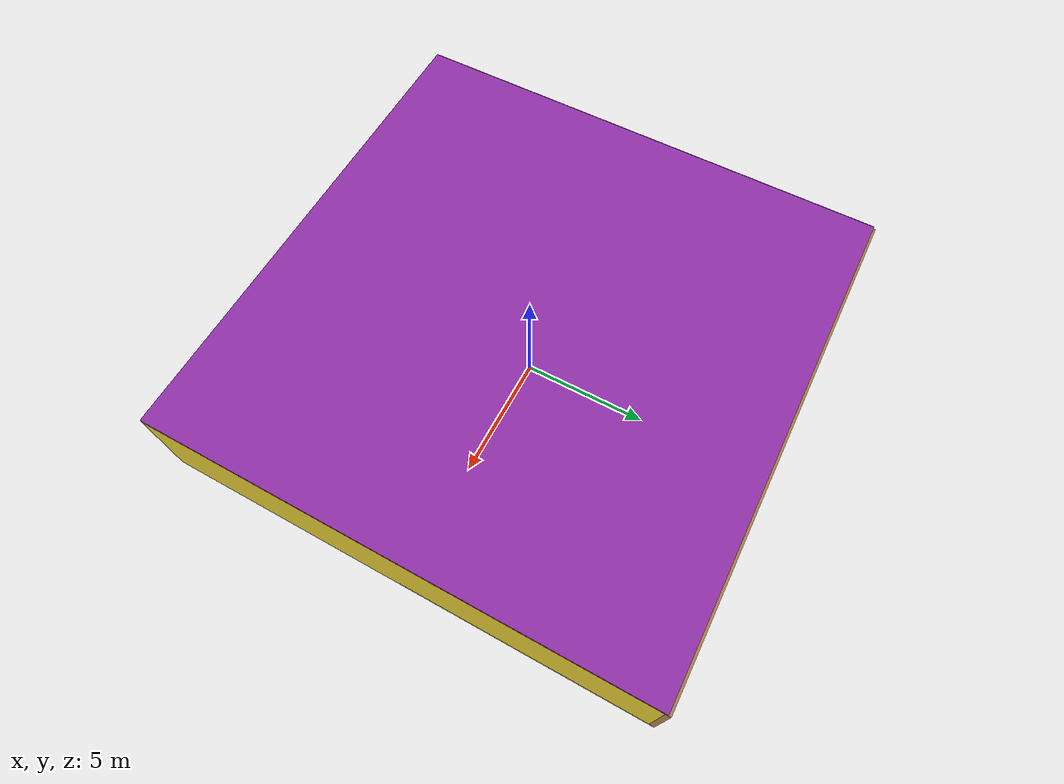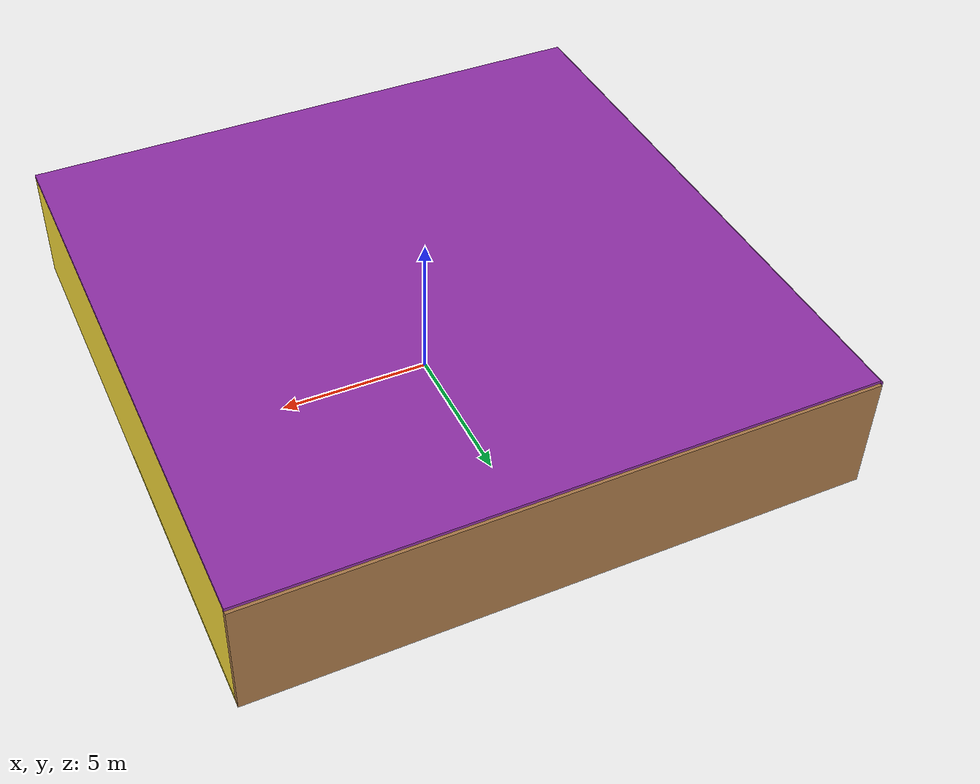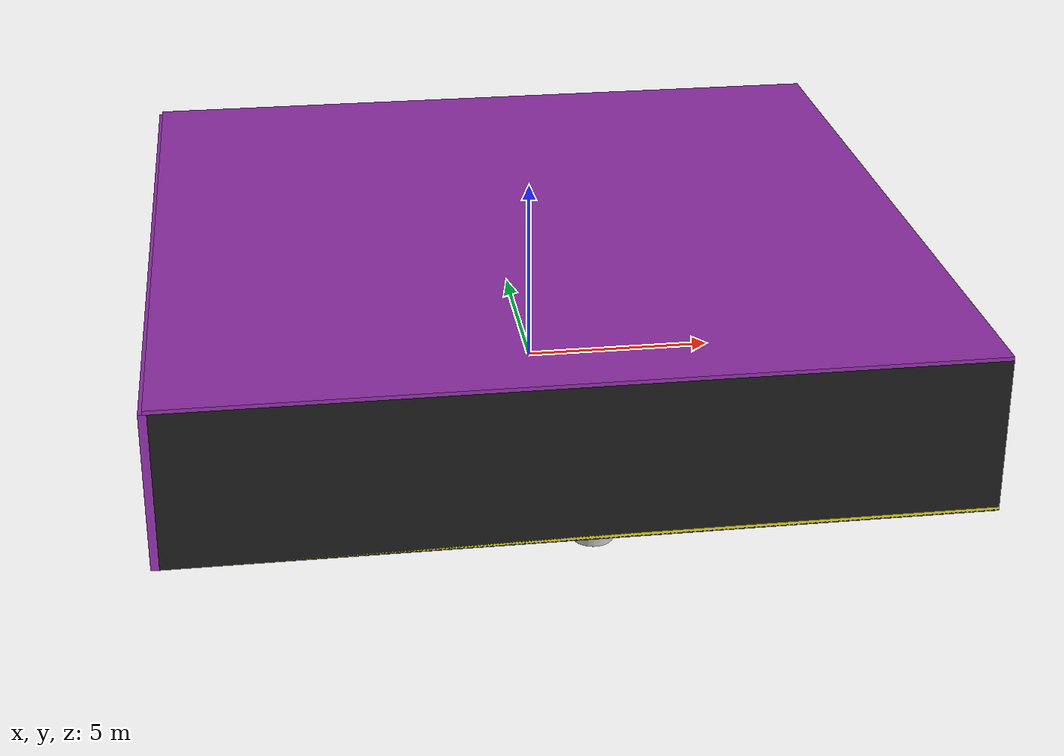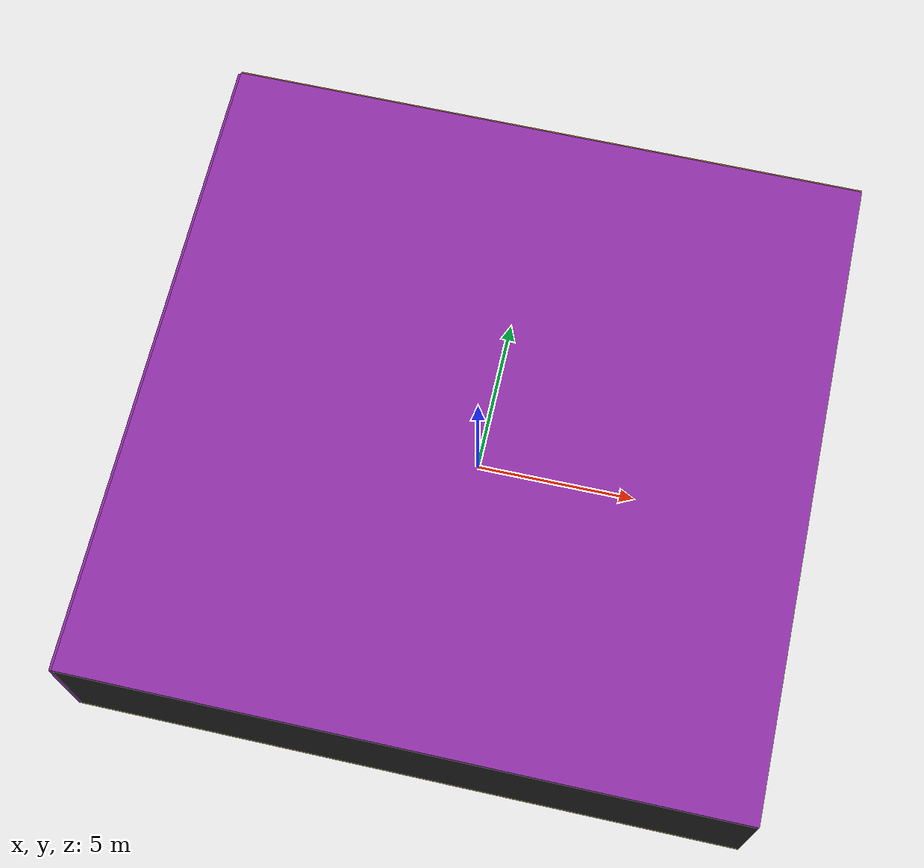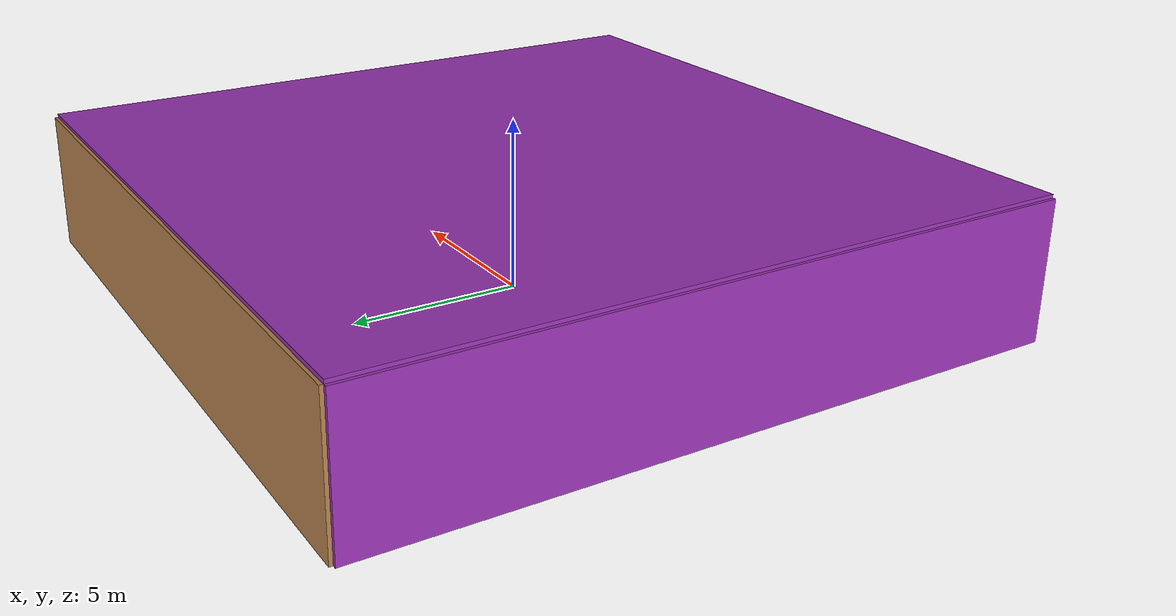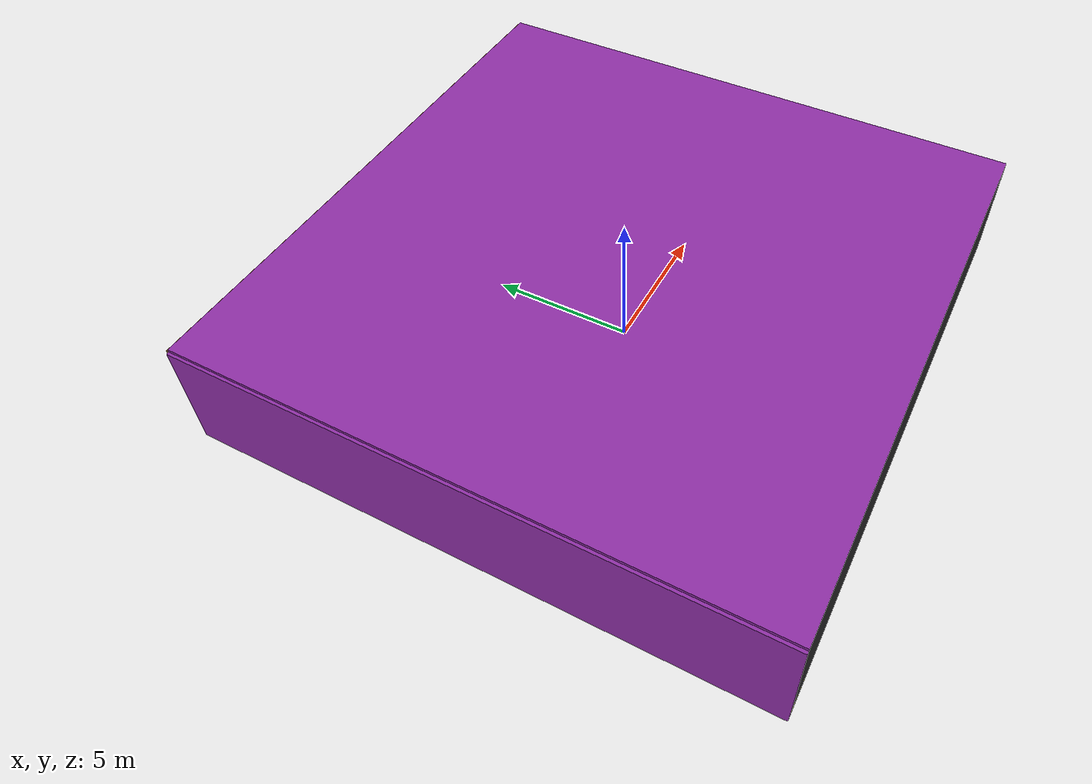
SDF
<sdf version="1.4">
 <world name="default">
  <physics type="ode">
   <max_step_size>0.001</max_step_size>
   <real_time_factor>1</real_time_factor>
   <real_time_update_rate>1000</real_time_update_rate>
   <gravity>0 0 -9.8</gravity>
  </physics>
  <scene><ambient>0.4 0.4 0.4 1</ambient><background>0.7 0.7 0.7 1</background><shadows>1</shadows></scene>
  <model name="Surrounding">
   <static>1</static>
   <link name="Ceiling">
    <collision name="Ceiling_Collision"><geometry><box><size>20 20 0.1</size></box></geometry></collision>
    <visual name="Ceiling_Visual">
     <geometry><box><size>20 20 0.1</size></box></geometry>
     <material>
      <script><uri>file://media/materials/scripts/gazebo.material</uri><name>Gazebo/PurpleGlow</name></script>
     </material>
    </visual>
    <pose>0 0 4.05 0 0 0</pose>
   </link>
   <link name="Wall_South">
    <collision name="Wall_South_Collision">
     <geometry><box><size>20 0 4</size></box></geometry>
     <pose>0 0 2 0 -0 0</pose>
    </collision>
    <visual name="Wall_South_Visual">
     <pose>0 0 2 0 -0 0</pose>
     <geometry><box><size>20 0 4</size></box></geometry>
     <material>
      <script><uri>file://media/materials/scripts/gazebo.material</uri><name>Gazebo/Black</name></script>
     </material>
    </visual>
    <velocity_decay><linear>0</linear><angular>0</angular></velocity_decay>
    <pose>0 -10 0 0 -0 0</pose>
   </link>
   <link name="Wall_East">
    <collision name="Wall_21_Collision">
     <geometry><box><size>20 0 4</size></box></geometry>
     <pose>0 0 2 0 -0 0</pose>
    </collision>
    <visual name="Wall_21_Visual">
     <pose>0 0 2 0 -0 0</pose>
     <geometry><box><size>20 0 4</size></box></geometry>
     <material>
      <script><uri>file://media/materials/scripts/gazebo.material</uri><name>Gazebo/ZincYellow</name></script>
     </material>
    </visual>
    <velocity_decay><linear>0</linear><angular>0</angular></velocity_decay>
    <pose>10 0 0 0 -0 1.5708</pose>
   </link>
   <link name="Wall_North">
    <collision name="Wall_22_Collision">
     <geometry><box><size>20 0.2 4</size></box></geometry>
     <pose>0 0 2 0 -0 0</pose>
    </collision>
    <visual name="Wall_22_Visual">
     <pose>0 0 2 0 -0 0</pose>
     <geometry><box><size>20 0.2 4</size></box></geometry>
     <material>
      <script><uri>file://media/materials/scripts/gazebo.material</uri><name>Gazebo/WoodPallet</name></script>
     </material>
    </visual>
    <velocity_decay><linear>0</linear><angular>0</angular></velocity_decay>
    <pose>0 10 0 0 -0 0</pose>
   </link>
   <link name="Wall_West">
    <collision name="Wall_23_Collision">
     <geometry><box><size>20 0.2 4</size></box></geometry>
     <pose>0 0 2 0 -0 0</pose>
    </collision>
    <visual name="Wall_23_Visual">
     <pose>0 0 2 0 -0 0</pose>
     <geometry><box><size>20 0.2 4</size></box></geometry>
     <material>
      <script><uri>file://media/materials/scripts/gazebo.material</uri><name>Gazebo/Purple</name></script>
     </material>
    </visual>
    <velocity_decay><linear>0</linear><angular>0</angular></velocity_decay>
    <pose>-10 0 0 0 0 -1.5708</pose>
   </link>
   <link name="Ground_link">
    <collision name="collision">
     <pose>0 0 .05 0 -0 0</pose>
     <geometry><box><size>20 20 0.1</size></box></geometry>
    </collision>
    <visual name="visual">
     <pose>0 0 .05 0 -0 0</pose>
     <geometry><box><size>20 20 0.1</size></box></geometry>
     <material>
      <script><uri>file://media/materials/scripts/gazebo.material</uri><name>Gazebo/Yellow</name></script>
     </material>
    </visual>
   </link>
   <static>1</static>
  </model>
  <spherical_coordinates>
   <surface_model>EARTH_WGS84</surface_model>
   <latitude_deg>0</latitude_deg>
   <longitude_deg>0</longitude_deg>
   <elevation>0</elevation>
   <heading_deg>0</heading_deg>
  </spherical_coordinates>
  <light name="lightball_0" type="diffuse">
   <diffuse>0.8 0.8 0.8 1</diffuse>
   <specular>0.2 0.2 0.2 1</specular>
   <attenuation>
    <range>100</range>
    <constant>0.7</constant>
    <linear>0.01</linear>
    <quadratic>0.001</quadratic>
   </attenuation>
   <direction>-0.5 0.1 -0.9</direction>
   <pose>-6.19152914901 7.41784914752 0.817212073505 0 0 0</pose>
  </light>
  <light name="lightball_1" type="diffuse">
   <diffuse>0.8 0.8 0.8 1</diffuse>
   <specular>0.2 0.2 0.2 1</specular>
   <attenuation>
    <range>100</range>
    <constant>0.7</constant>
    <linear>0.01</linear>
    <quadratic>0.001</quadratic>
   </attenuation>
   <direction>-0.5 0.1 -0.9</direction>
   <pose>5.41303761174 -2.82800063024 3.04928896616 0 0 0</pose>
  </light>
  <light name="lightball_2" type="diffuse">
   <diffuse>0.8 0.8 0.8 1</diffuse>
   <specular>0.2 0.2 0.2 1</specular>
   <attenuation>
    <range>100</range>
    <constant>0.7</constant>
    <linear>0.01</linear>
    <quadratic>0.001</quadratic>
   </attenuation>
   <direction>-0.5 0.1 -0.9</direction>
   <pose>4.53469198535 -8.81867461823 2.40243961267 0 0 0</pose>
  </light>
  <light name="lightball_3" type="diffuse">
   <diffuse>0.8 0.8 0.8 1</diffuse>
   <specular>0.2 0.2 0.2 1</specular>
   <attenuation>
    <range>100</range>
    <constant>0.7</constant>
    <linear>0.01</linear>
    <quadratic>0.001</quadratic>
   </attenuation>
   <direction>-0.5 0.1 -0.9</direction>
   <pose>8.78477293539 0.177444898521 2.87249636377 0 0 0</pose>
  </light>
  <light name="lightball_4" type="diffuse">
   <diffuse>0.8 0.8 0.8 1</diffuse>
   <specular>0.2 0.2 0.2 1</specular>
   <attenuation>
    <range>100</range>
    <constant>0.7</constant>
    <linear>0.01</linear>
    <quadratic>0.001</quadratic>
   </attenuation>
   <direction>-0.5 0.1 -0.9</direction>
   <pose>6.94951693758 -5.66834972806 1.94061424835 0 0 0</pose>
  </light>
  <light name="lightball_5" type="diffuse">
   <diffuse>0.8 0.8 0.8 1</diffuse>
   <specular>0.2 0.2 0.2 1</specular>
   <attenuation>
    <range>100</range>
    <constant>0.7</constant>
    <linear>0.01</linear>
    <quadratic>0.001</quadratic>
   </attenuation>
   <direction>-0.5 0.1 -0.9</direction>
   <pose>7.25013816829 3.84468068363 1.64866518576 0 0 0</pose>
  </light>
  <light name="lightball_6" type="diffuse">
   <diffuse>0.8 0.8 0.8 1</diffuse>
   <specular>0.2 0.2 0.2 1</specular>
   <attenuation>
    <range>100</range>
    <constant>0.7</constant>
    <linear>0.01</linear>
    <quadratic>0.001</quadratic>
   </attenuation>
   <direction>-0.5 0.1 -0.9</direction>
   <pose>1.16204263744 -5.12092121035 3.37536297314 0 0 0</pose>
  </light>
  <light name="lightball_7" type="diffuse">
   <diffuse>0.8 0.8 0.8 1</diffuse>
   <specular>0.2 0.2 0.2 1</specular>
   <attenuation>
    <range>100</range>
    <constant>0.7</constant>
    <linear>0.01</linear>
    <quadratic>0.001</quadratic>
   </attenuation>
   <direction>-0.5 0.1 -0.9</direction>
   <pose>-7.96433217886 -9.48925768994 3.78109710356 0 0 0</pose>
  </light>
  <light name="lightball_8" type="diffuse">
   <diffuse>0.8 0.8 0.8 1</diffuse>
   <specular>0.2 0.2 0.2 1</specular>
   <attenuation>
    <range>100</range>
    <constant>0.7</constant>
    <linear>0.01</linear>
    <quadratic>0.001</quadratic>
   </attenuation>
   <direction>-0.5 0.1 -0.9</direction>
   <pose>2.94339362965 -7.28959897169 1.62321146002 0 0 0</pose>
  </light>
  <light name="lightball_9" type="diffuse">
   <diffuse>0.8 0.8 0.8 1</diffuse>
   <specular>0.2 0.2 0.2 1</specular>
   <attenuation>
    <range>100</range>
    <constant>0.7</constant>
    <linear>0.01</linear>
    <quadratic>0.001</quadratic>
   </attenuation>
   <direction>-0.5 0.1 -0.9</direction>
   <pose>-4.25394619167 -4.19747470638 2.9135129712 0 0 0</pose>
  </light>
  <light name="lightball_10" type="diffuse">
   <diffuse>0.8 0.8 0.8 1</diffuse>
   <specular>0.2 0.2 0.2 1</specular>
   <attenuation>
    <range>100</range>
    <constant>0.7</constant>
    <linear>0.01</linear>
    <quadratic>0.001</quadratic>
   </attenuation>
   <direction>-0.5 0.1 -0.9</direction>
   <pose>-8.41012301743 -4.34437376 2.70493644465 0 0 0</pose>
  </light>
  <light name="lightball_11" type="diffuse">
   <diffuse>0.8 0.8 0.8 1</diffuse>
   <specular>0.2 0.2 0.2 1</specular>
   <attenuation>
    <range>100</range>
    <constant>0.7</constant>
    <linear>0.01</linear>
    <quadratic>0.001</quadratic>
   </attenuation>
   <direction>-0.5 0.1 -0.9</direction>
   <pose>-5.19996433242 6.42730091161 2.59649883271 0 0 0</pose>
  </light>
  <include><uri>model://cabinet</uri><pose>-3.71150147746 6.85190075225 0 0 0 0.831146884067</pose></include>
  <include><uri>model://cabinet</uri><pose>-0.732089715152 -6.44746262114 0 0 0 1.84856248256</pose></include>
  <include>
   <uri>model://textured_shapes</uri>
   <pose>0.798695124817 -7.60073911182 0 0 0 2.79291435548</pose>
  </include>
  <include>
   <uri>model://robocup_3Dsim_goal</uri>
   <pose>2.09491712845 8.51546733793 0 0 0 0.763335264769</pose>
  </include>
  <include><uri>model://cabinet</uri><pose>4.83069520398 4.12878875196 0 0 0 1.49772955992</pose></include>
 </world>
</sdf>

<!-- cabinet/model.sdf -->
<sdf version="1.5">
  <model name="cabinet">
    <static>true</static>
    <link name="cabinet_bottom_plate">
      <inertial>
        <pose>0 0 -1 0 0 0</pose>
        <inertia>
          <ixx>2.050000</ixx>
          <ixy>0</ixy>
          <ixz>0</ixz>
          <iyy>2.050000</iyy>
          <iyz>0</iyz>
          <izz>2.050000</izz>
        </inertia>
        <mass>25.000000</mass>
      </inertial>
      <collision name="cabinet_bottom_plate_geom">
        <pose>0 0 0.010000 0 0 0</pose>
        <geometry>
          <box>
            <size>0.450000 0.450000 0.020000</size>
          </box>
        </geometry>
      </collision>
      <visual name="cabinet_bottom_plate_geom_visual">
        <pose>0 0 0.010000 0 0 0</pose>
        <geometry>
          <box>
            <size>0.450000 0.450000 0.020000</size>
          </box>
        </geometry>
        <material>
          <script>
            <uri>model://media/materials/scripts/gazebo.material</uri>
            <name>Gazebo/Wood</name>
          </script>
        </material>
      </visual>
      <collision name="cabinet_bottom_plate_geom_cabinet_back_plate">
        <pose>0.235000 0 0.510000 0 0 0</pose>
        <geometry>
          <box>
            <size>0.020000 0.450000 1.020000</size>
          </box>
        </geometry>
      </collision>
      <visual name="cabinet_bottom_plate_geom_cabinet_back_plate_visual">
        <pose>0.235000 0 0.510000 0 0 0</pose>
        <geometry>
          <box>
            <size>0.020000 0.450000 1.020000</size>
          </box>
        </geometry>
        <material>
          <script>
            <uri>model://media/materials/scripts/gazebo.material</uri>
            <name>Gazebo/Wood</name>
          </script>
        </material>
      </visual>
      <collision name="cabinet_bottom_plate_geom_cabinet_left_plate">
        <pose>0 0.235000 0.510000 0 0 0</pose>
        <geometry>
          <box>
            <size>0.450000 0.020000 1.020000</size>
          </box>
        </geometry>
      </collision>
      <visual name="cabinet_bottom_plate_geom_cabinet_left_plate_visual">
        <pose>0 0.235000 0.510000 0 0 0</pose>
        <geometry>
          <box>
            <size>0.450000 0.020000 1.020000</size>
          </box>
        </geometry>
        <material>
          <script>
            <uri>model://media/materials/scripts/gazebo.material</uri>
            <name>Gazebo/Wood</name>
          </script>
        </material>
      </visual>
      <collision name="cabinet_bottom_plate_geom_cabinet_middle_plate">
        <pose>0 0 0.510000 0 0 0</pose>
        <geometry>
          <box>
            <size>0.450000 0.450000 0.020000</size>
          </box>
        </geometry>
      </collision>
      <visual name="cabinet_bottom_plate_geom_cabinet_middle_plate_visual">
        <pose>0 0 0.510000 0 0 0</pose>
        <geometry>
          <box>
            <size>0.450000 0.450000 0.020000</size>
          </box>
        </geometry>
        <material>
          <script>
            <uri>model://media/materials/scripts/gazebo.material</uri>
            <name>Gazebo/Wood</name>
          </script>
        </material>
      </visual>
      <collision name="cabinet_bottom_plate_geom_cabinet_right_plate">
        <pose>0 -0.235000 0.510000 0 0 0</pose>
        <geometry>
          <box>
            <size>0.450000 0.020000 1.020000</size>
          </box>
        </geometry>
      </collision>
      <visual name="cabinet_bottom_plate_geom_cabinet_right_plate_visual">
        <pose>0 -0.235000 0.510000 0 0 0</pose>
        <geometry>
          <box>
            <size>0.450000 0.020000 1.020000</size>
          </box>
        </geometry>
        <material>
          <script>
            <uri>model://media/materials/scripts/gazebo.material</uri>
            <name>Gazebo/Wood</name>
          </script>
        </material>
      </visual>
      <collision name="cabinet_bottom_plate_geom_cabinet_top_plate">
        <pose>0 0 1.010000 0 0 0</pose>
        <geometry>
          <box>
            <size>0.450000 0.450000 0.020000</size>
          </box>
        </geometry>
      </collision>
      <visual name="cabinet_bottom_plate_geom_cabinet_top_plate_visual">
        <pose>0 0 1.010000 0 0 0</pose>
        <geometry>
          <box>
            <size>0.450000 0.450000 0.020000</size>
          </box>
        </geometry>
        <material>
          <script>
            <uri>model://media/materials/scripts/gazebo.material</uri>
            <name>Gazebo/Wood</name>
          </script>
        </material>
      </visual>
    </link>
  </model>
</sdf>

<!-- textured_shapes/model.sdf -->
<sdf version="1.6">
  <model name="textured_shapes">
    <pose>0 0 0.5 0 0 0</pose>
    <link name="box">
      <pose>0 -1.5 0 0 0 0</pose>
      <collision name="collision">
        <geometry>
          <box>
            <size>1 1 1</size>
          </box>
        </geometry>
      </collision>
      <visual name="visual">
        <geometry>
          <box>
            <size>1 1 1</size>
          </box>
        </geometry>
        <material>
          <script>
            <uri>model://../model_source/models/textured_shapes/materials/scripts</uri>
            <uri>model://../model_source/models/textured_shapes/materials/textures</uri>
            <name>TexturedShape/Squares</name>
          </script>
        </material>
      </visual>
    </link>
    <link name="sphere">
      <collision name="collision">
        <geometry>
          <sphere>
            <radius>0.5</radius>
          </sphere>
        </geometry>
      </collision>
      <visual name="visual">
        <geometry>
          <sphere>
            <radius>0.5</radius>
          </sphere>
        </geometry>
        <material>
          <script>
            <uri>model://../model_source/models/textured_shapes/materials/scripts</uri>
            <uri>model://../model_source/models/textured_shapes/materials/textures</uri>
            <name>TexturedShape/Squares</name>
          </script>
        </material>
      </visual>
    </link>
    <link name="cylinder">
      <pose>0 1.5 0 0 0 0</pose>
      <collision name="collision">
        <geometry>
          <cylinder>
            <radius>0.5</radius>
            <length>1</length>
          </cylinder>
        </geometry>
      </collision>
      <visual name="visual">
        <geometry>
          <cylinder>
            <radius>0.5</radius>
            <length>1</length>
          </cylinder>
        </geometry>
        <material>
          <script>
            <uri>model://../model_source/models/textured_shapes/materials/scripts</uri>
            <uri>model://../model_source/models/textured_shapes/materials/textures</uri>
            <name>TexturedShape/Squares</name>
          </script>
        </material>
      </visual>
    </link>
  </model>
</sdf>

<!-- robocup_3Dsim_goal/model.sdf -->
<sdf version="1.5">
  <model name="robocup_3d_goal">
    <static>true</static>
    <link name="left_post">
      <pose>0 1.05 0.45 0 0 0</pose>
      <collision name="collision">
        <geometry>
          <cylinder>
            <radius>0.05</radius>
            <length>0.9</length>
          </cylinder>
        </geometry>
      </collision>
      <visual name="visual">
        <geometry>
          <cylinder>
            <radius>0.05</radius>
            <length>0.9</length>
          </cylinder>
        </geometry>
        <material>
          <script>
            <uri>file://media/materials/scripts/gazebo.material</uri>
            <name>Gazebo/ZincYellow</name>
          </script>
        </material>
      </visual>
    </link>
    <link name="left_support_horiz_lower">
      <pose>0.30 1.05 0.01 0 0 0</pose>
      <collision name="collision">
        <geometry>
          <box>
            <size>0.50 0.02 0.02</size>
          </box>
        </geometry>
      </collision>
      <visual name="visual">
        <geometry>
          <box>
            <size>0.50 0.02 0.02</size>
          </box>
        </geometry>
        <material>
          <script>
            <uri>file://media/materials/scripts/gazebo.material</uri>
            <name>Gazebo/White</name>
          </script>
        </material>
      </visual>
    </link>
    <link name="left_support_horiz_upper">
      <pose>0.30 1.05 0.79 0 0 0</pose>
      <collision name="collision">
        <geometry>
          <box>
            <size>0.50 0.02 0.02</size>
          </box>
        </geometry>
      </collision>
      <visual name="visual">
        <geometry>
          <box>
            <size>0.50 0.02 0.02</size>
          </box>
        </geometry>
        <material>
          <script>
            <uri>file://media/materials/scripts/gazebo.material</uri>
            <name>Gazebo/White</name>
          </script>
        </material>
      </visual>
    </link>
    <link name="left_support_vertical">
      <pose>0.56 1.05 0.4 0 1.5708 0</pose>
      <collision name="collision">
        <geometry>
          <box>
            <size>0.80 0.02 0.02</size>
          </box>
        </geometry>
      </collision>
      <visual name="visual">
        <geometry>
          <box>
            <size>0.80 0.02 0.02</size>
          </box>
        </geometry>
        <material>
          <script>
            <uri>file://media/materials/scripts/gazebo.material</uri>
            <name>Gazebo/White</name>
          </script>
        </material>
      </visual>
    </link>
    <link name="right_support_horiz_lower">
      <pose>0.30 -1.05 0.01 0 0 0</pose>
      <collision name="collision">
        <geometry>
          <box>
            <size>0.50 0.02 0.02</size>
          </box>
        </geometry>
      </collision>
      <visual name="visual">
        <geometry>
          <box>
            <size>0.50 0.02 0.02</size>
          </box>
        </geometry>
        <material>
          <script>
            <uri>file://media/materials/scripts/gazebo.material</uri>
            <name>Gazebo/White</name>
          </script>
        </material>
      </visual>
    </link>
    <link name="right_support_horiz_upper">
      <pose>0.30 -1.05 0.79 0 0 0</pose>
      <collision name="collision">
        <geometry>
          <box>
            <size>0.50 0.02 0.02</size>
          </box>
        </geometry>
      </collision>
      <visual name="visual">
        <geometry>
          <box>
            <size>0.50 0.02 0.02</size>
          </box>
        </geometry>
        <material>
          <script>
            <uri>file://media/materials/scripts/gazebo.material</uri>
            <name>Gazebo/White</name>
          </script>
        </material>
      </visual>
    </link>
    <link name="right_support_vertical">
      <pose>0.56 -1.05 0.4 0 1.5708 0</pose>
      <collision name="collision">
        <geometry>
          <box>
            <size>0.80 0.02 0.02</size>
          </box>
        </geometry>
      </collision>
      <visual name="visual">
        <geometry>
          <box>
            <size>0.80 0.02 0.02</size>
          </box>
        </geometry>
        <material>
          <script>
            <uri>file://media/materials/scripts/gazebo.material</uri>
            <name>Gazebo/White</name>
          </script>
        </material>
      </visual>
    </link>
    <link name="center_support_horiz_lower">
      <pose>0.56 0 0.01 0 1.5708 0</pose>
      <collision name="collision">
        <geometry>
          <box>
            <size>0.02 2.08 0.02</size>
          </box>
        </geometry>
      </collision>
      <visual name="visual">
        <geometry>
          <box>
            <size>0.02 2.08 0.02</size>
          </box>
        </geometry>
        <material>
          <script>
            <uri>file://media/materials/scripts/gazebo.material</uri>
            <name>Gazebo/White</name>
          </script>
        </material>
      </visual>
    </link>
    <link name="center_support_horiz_upper">
      <pose>0.56 0 0.79 0 1.5708 0</pose>
      <collision name="collision">
        <geometry>
          <box>
            <size>0.02 2.08 0.02</size>
          </box>
        </geometry>
      </collision>
      <visual name="visual">
        <geometry>
          <box>
            <size>0.02 2.08 0.02</size>
          </box>
        </geometry>
        <material>
          <script>
            <uri>file://media/materials/scripts/gazebo.material</uri>
            <name>Gazebo/White</name>
          </script>
        </material>
      </visual>
    </link>
    <link name="right_post">
      <pose>0 -1.05 0.45 0 0 0</pose>
      <collision name="collision">
        <geometry>
          <cylinder>
            <radius>0.05</radius>
            <length>0.9</length>
          </cylinder>
        </geometry>
      </collision>
      <visual name="visual">
        <geometry>
          <cylinder>
            <radius>0.05</radius>
            <length>0.9</length>
          </cylinder>
        </geometry>
        <material>
          <script>
            <uri>file://media/materials/scripts/gazebo.material</uri>
            <name>Gazebo/ZincYellow</name>
          </script>
        </material>
      </visual>
    </link>
    <link name="crossbar">
      <pose>0 0 0.85 1.57 1.57 0</pose>
      <collision name="collision">
        <geometry>
          <cylinder>
            <radius>0.05</radius>
            <length>2.0</length>
          </cylinder>
        </geometry>
      </collision>
      <visual name="visual">
        <geometry>
          <cylinder>
            <radius>0.05</radius>
            <length>2.0</length>
          </cylinder>
        </geometry>
        <material>
          <script>
            <uri>file://media/materials/scripts/gazebo.material</uri>
            <name>Gazebo/ZincYellow</name>
          </script>
        </material>
      </visual>
    </link>
    <link name="center_net">
      <pose>0.56 0 0.40 0 0 0</pose>
      <collision name="collision">
        <geometry>
          <box>
            <size>0.01 2.1 0.80</size>
          </box>
        </geometry>
      </collision>
      <visual name="visual">
        <geometry>
          <box>
            <size>0.01 2.1 0.80</size>
          </box>
        </geometry>
        <material>
          <script>
            <uri>model://../model_source/models/robocup09_spl_field/materials/scripts/</uri>
            <uri>model://../model_source/models/robocup09_spl_field/materials/textures/</uri>
            <name>RoboCup/Net</name>
          </script>
        </material>
      </visual>
    </link>
    <link name="left_net">
      <pose>0.30 1.05 0.40 0 0 0</pose>
      <collision name="collision">
        <geometry>
          <box>
            <size>0.50 0.01 0.76</size>
          </box>
        </geometry>
      </collision>
      <visual name="visual">
        <geometry>
          <box>
            <size>0.50 0.01 0.76</size>
          </box>
        </geometry>
        <material>
          <script>
            <uri>model://../model_source/models/robocup09_spl_field/materials/scripts/</uri>
            <uri>model://../model_source/models/robocup09_spl_field/materials/textures/</uri>
            <name>RoboCup/Net</name>
          </script>
        </material>
      </visual>
    </link>
    <link name="right_net">
      <pose>0.30 -1.05 0.40 0 0 0</pose>
      <collision name="collision">
        <geometry>
          <box>
            <size>0.50 0.01 0.76</size>
          </box>
        </geometry>
      </collision>
      <visual name="visual">
        <geometry>
          <box>
            <size>0.50 0.01 0.76</size>
          </box>
        </geometry>
        <material>
          <script>
            <uri>model://../model_source/models/robocup09_spl_field/materials/scripts/</uri>
            <uri>model://../model_source/models/robocup09_spl_field/materials/textures/</uri>
            <name>RoboCup/Net</name>
          </script>
        </material>
      </visual>
    </link>
  </model>
</sdf>
